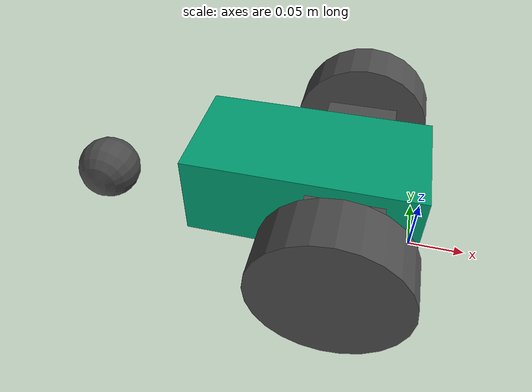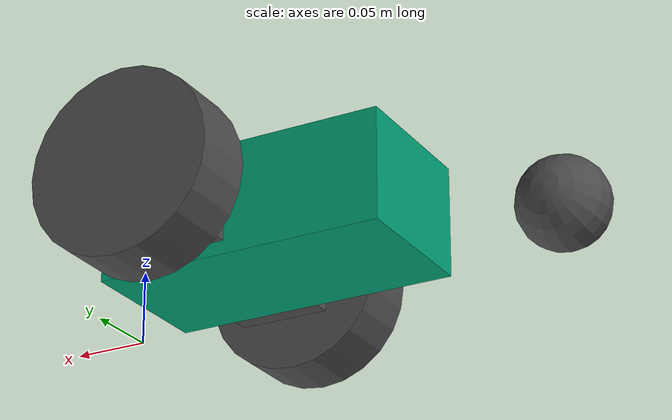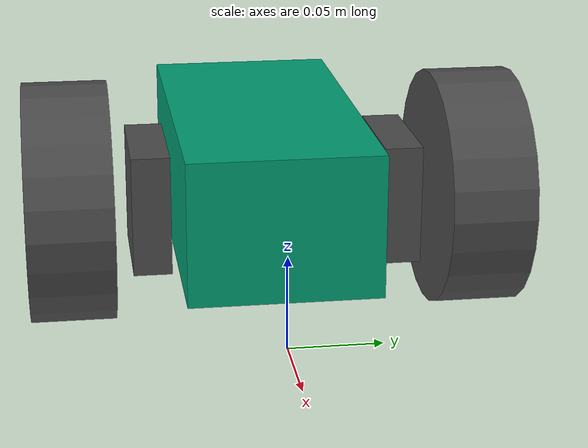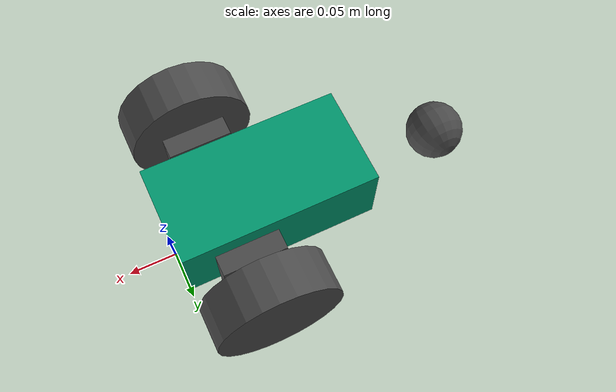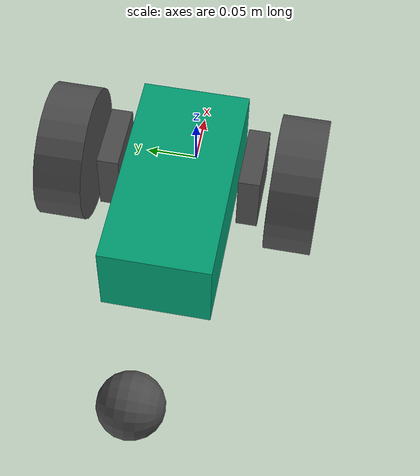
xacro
<?xml version="1.0"?>
<robot name="riley_robot" xmlns:xacro="http://ros.org/wiki/xacro">
  <xacro:arg name="wheel_spacing_input"        default="0.151" />
  <xacro:arg name="wheel_diameter_input"       default="0.126" />
  <xacro:arg name="wheel_shaft_offset_input"   default="0" />
  <xacro:arg name="rear_caster_offset_input"   default="-0.200" />
  <xacro:arg name="back_wheel_diameter_input"  default="0.06" />

  <xacro:property name="wheel_diameter"      value="$(arg wheel_diameter_input)"/>
  <xacro:property name="wheel_spacing"       value="$(arg wheel_spacing_input)"/>
  <xacro:property name="wheel_shaft_offset"  value="$(arg wheel_shaft_offset_input)"/>
  <xacro:property name="rear_caster_offset"  value="$(arg rear_caster_offset_input)"/>
  <xacro:property name="back_wheel_diameter" value="$(arg back_wheel_diameter_input)"/>

  <link name="base_footprint"/>

  <link name="base_link"/>
  <joint name="base_link_joint" type="fixed">
    <origin xyz="0 0 ${wheel_diameter/2}" rpy="0 0 0" />
    <parent link="base_footprint"/>
    <child link="base_link" />
  </joint>

  <link name="chassis_link">
    <inertial>
      <origin xyz="0 0 0"
        rpy="0 0 0" />
      <mass
        value="0.317289185919371" />
      <inertia
        ixx="0.000970876188779837"
        ixy="6.94113413553014E-10"
        ixz="3.51219781695308E-06"
        iyy="0.00067590401119229"
        iyz="9.43089820999509E-10"
        izz="0.00152301084809347" />
    </inertial>
    <visual>
      <geometry>
        <box size="${-rear_caster_offset} ${wheel_spacing-0.05} 0.076"/>
        <mesh filename="package://urdf_tutorial/STL_URDF/RILey_assembly-MiddlepartV1-1.STL"/>
      </geometry>
    </visual>
    <collision>
      <origin xyz="0 0 0.0" />
      <geometry>
        <box size="${-rear_caster_offset} ${wheel_spacing-0.05} 0.076"/>
        <mesh filename="package://urdf_tutorial/STL_URDF/RILey_assembly-MiddlepartV1-1.STL"/>
      </geometry>
    </collision>
  </link>

  <joint name="chassis_link_joint" type="fixed">
    <origin xyz="${rear_caster_offset/2} 0 0" rpy="0 0 0" />
    <parent link="base_link"/>
    <child link="chassis_link" />
  </joint>

  <xacro:macro name="wheel" params="prefix reflect">
    <link name="${prefix}_wheel">
      <visual>
        <origin xyz="${-wheel_diameter/2} ${-wheel_diameter/4} 0" rpy="${pi/2} 0 0"/>
        <geometry>
          <cylinder radius="${wheel_diameter/2}" length="0.044"/>
          <mesh filename="package://urdf_tutorial/STL_URDF/RILey_assembly-ReelyBuggyWheel_Right-2.STL"/>
        </geometry>
      </visual>
      <visual>
        <origin xyz="${-wheel_diameter/2} 0.01 0" rpy="${pi/2} 0 0"/>
        <geometry>
          <box size="${wheel_diameter/2} ${wheel_diameter/2} 0.02" />
        </geometry>
      </visual>
      <collision>
        <origin xyz="${-wheel_diameter/2} ${-wheel_diameter/4} 0" rpy="${pi/2} 0 0"/>
        <geometry>
          <cylinder radius="${wheel_diameter/2}" length="0.044"/>
        </geometry>
      </collision>
      <inertial>
        <origin xyz="0 0 0" rpy="0 0 0"/>
        <mass value="0.215732042845507"/>
        <inertia
        ixx="0.00025759718782391"
        ixy="2.12843584581061E-11"
        ixz="-5.66299342939977E-12"
        iyy="0.000452238839696424"
        iyz="3.99311464604179E-12"
        izz="0.000257597229543076" />
        </inertial>
    </link>

    <gazebo reference="${prefix}_wheel">
      <material>Gazebo/DarkGrey</material>
      <selfCollide>false</selfCollide>
      <mu1 value="1"/>
      <mu2 value="1"/>
      <kp value="10000000.0" />
      <kd value="1" />
      <fdir1 value="0 0 1"/>
    </gazebo>

    <joint name="${prefix}_wheel_joint" type="continuous">
      <axis xyz="0 ${-reflect} 0" rpy="0 0 0" />
      <parent link="base_link"/>
      <child link="${prefix}_wheel"/>
      <origin xyz="${wheel_shaft_offset} ${(0.5*wheel_spacing)*reflect} 0" rpy="${(reflect+1)*pi/2} 0 0"/>
    </joint>

    <transmission name="${prefix}_wheel_trans">
      <type>transmission_interface/SimpleTransmission</type>
      <joint name="${prefix}_wheel_joint">
        <hardwareInterface>hardware_interface/VelocityJointInterface</hardwareInterface>
      </joint>
      <actuator name="${prefix}_actuator">
        <mechanicalReduction>1</mechanicalReduction>
      </actuator>
    </transmission>
  </xacro:macro>

  <!-- add the wheels -->
  <xacro:wheel prefix="left" reflect="1"/>
  <xacro:wheel prefix="right" reflect="-1"/>

  <xacro:macro name="sphere_inertia" params="m r">
    <inertial>
      <mass value="${m}"/>
      <inertia ixx="${2.0*m*(r*r)/5.0}" ixy="0.0" ixz="0.0" iyy="${2.0*m*(r*r)/5.0}" iyz="0.0" izz="${2.0*m*(r*r)/5.0}"/>
    </inertial>
  </xacro:macro>

  <link name="back_wheel">
    <visual>
      <origin rpy="1.57075 0 0" xyz="0 0 0"/>
      <geometry>
        <sphere radius="${back_wheel_diameter/2}"/>
        <mesh filename="package://urdf_tutorial/STL_URDF/RILey_assembly-Backwheel-1.STL"/>
      </geometry>
    </visual>
    <collision>
      <origin xyz="0 0 0" rpy="1.57075 0 0"/>
      <geometry>
        <sphere radius="${back_wheel_diameter/2}"/>
        <mesh filename="package://urdf_tutorial/STL_URDF/RILey_assembly-Backwheel-1.STL"/>
      </geometry>
    </collision>
    <xacro:sphere_inertia m="0.1" r="${back_wheel_diameter/2}"/>
  </link>

  <joint name="back_wheel_joint" type="continuous">
    <axis xyz="-0.133333333333 0 -0.015" rpy="0 0 0" />
    <origin xyz="${rear_caster_offset} 0 ${-back_wheel_diameter/2}" rpy="0 0 0"/>
    <parent link="chassis_link"/>
    <child link="back_wheel"/>
  </joint>

  <gazebo reference="back_wheel">
    <material>Gazebo/DarkGrey</material>
    <selfCollide>false</selfCollide>
    <mu1 value="0.05"/>
    <mu2 value="0.05"/>
    <kp value="10000000.0" />
    <kd value="1" />
    <fdir1 value="0 0 1"/>
  </gazebo>

  <gazebo>
    <plugin name="gazebo_ros_control" filename="libgazebo_ros_control.so">
      <robotNamespace></robotNamespace>
    </plugin>

    <plugin name="p3d_base_controller" filename="libgazebo_ros_p3d.so">
      <alwaysOn>true</alwaysOn>
      <updateRate>50.0</updateRate>
      <bodyName>base_footprint</bodyName>
      <topicName>pose_ground_truth</topicName>
      <gaussianNoise>0.01</gaussianNoise>
      <frameName>map</frameName>
      <xyzOffsets>0 0 0</xyzOffsets>
      <rpyOffsets>0 0 0</rpyOffsets>
    </plugin>
  </gazebo>

  <gazebo reference="base_link">
    <turnGravityOff>false</turnGravityOff>
  </gazebo>
  <gazebo reference="chassis_link">
    <turnGravityOff>false</turnGravityOff>
  </gazebo>

</robot>
